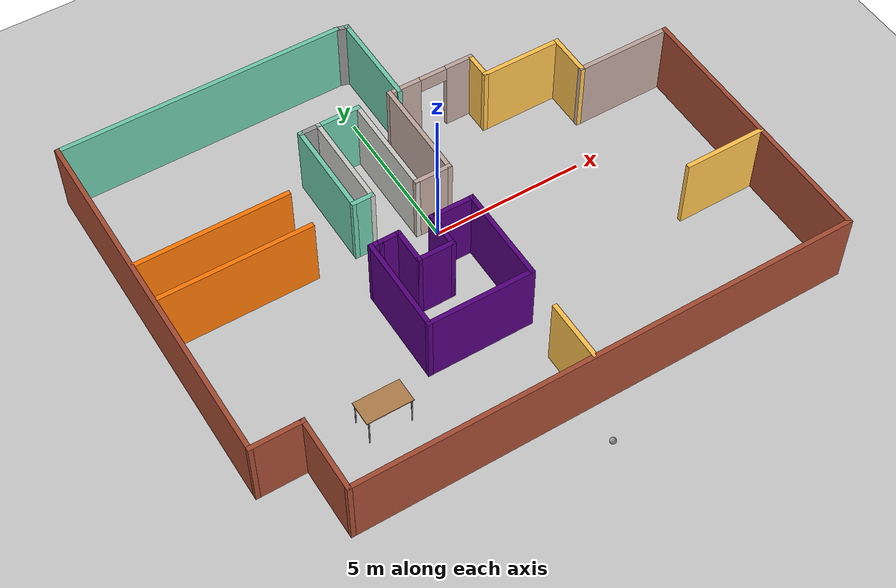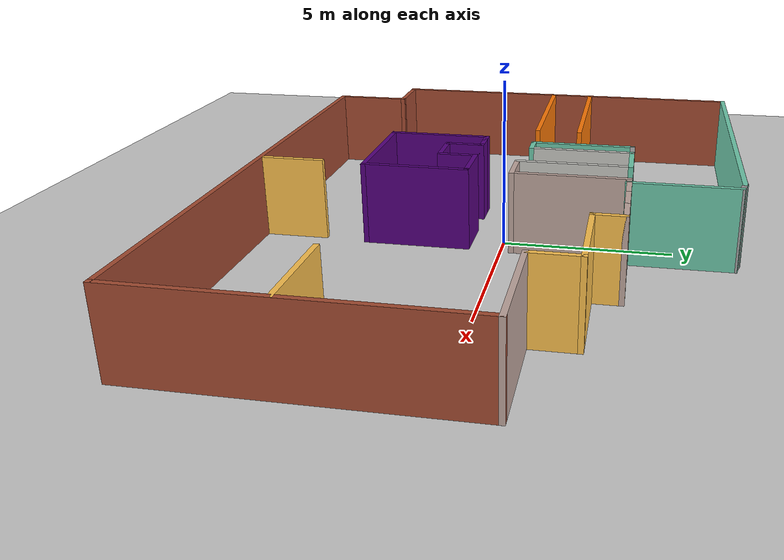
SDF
<sdf version="1.6">
 <world name="default">
  <model name="ground_plane">
   <static>1</static>
   <link name="link">
    <collision name="collision">
     <geometry><plane><normal>0 0 1</normal><size>100 100</size></plane></geometry>
     <surface><friction><ode><mu>100</mu><mu2>50</mu2></ode></friction></surface>
    </collision>
    <visual name="visual">
     <cast_shadows>0</cast_shadows>
     <geometry><plane><normal>0 0 1</normal><size>100 100</size></plane></geometry>
     <material>
      <script><uri>file://media/materials/scripts/gazebo.material</uri><name>Gazebo/Grey</name></script>
     </material>
    </visual>
   </link>
  </model>
  <model name="table">
   <static>1</static>
   <link name="link">
    <collision name="surface">
     <pose>0 0 1 0 -0 0</pose>
     <geometry><box><size>1.5 0.8 0.03</size></box></geometry>
     <surface><friction><ode><mu>0.6</mu><mu2>0.6</mu2></ode></friction></surface>
    </collision>
    <visual name="visual1">
     <pose>0 0 1 0 -0 0</pose>
     <geometry><box><size>1.5 0.8 0.03</size></box></geometry>
     <material>
      <script><uri>file://media/materials/scripts/gazebo.material</uri><name>Gazebo/Wood</name></script>
     </material>
    </visual>
    <collision name="front_left_leg">
     <pose>0.68 0.38 0.5 0 -0 0</pose>
     <geometry><cylinder><radius>0.02</radius><length>1</length></cylinder></geometry>
    </collision>
    <visual name="front_left_leg">
     <pose>0.68 0.38 0.5 0 -0 0</pose>
     <geometry><cylinder><radius>0.02</radius><length>1</length></cylinder></geometry>
     <material>
      <script><uri>file://media/materials/scripts/gazebo.material</uri><name>Gazebo/Grey</name></script>
     </material>
    </visual>
    <collision name="front_right_leg">
     <pose>0.68 -0.38 0.5 0 -0 0</pose>
     <geometry><cylinder><radius>0.02</radius><length>1</length></cylinder></geometry>
    </collision>
    <visual name="front_right_leg">
     <pose>0.68 -0.38 0.5 0 -0 0</pose>
     <geometry><cylinder><radius>0.02</radius><length>1</length></cylinder></geometry>
     <material>
      <script><uri>file://media/materials/scripts/gazebo.material</uri><name>Gazebo/Grey</name></script>
     </material>
    </visual>
    <collision name="back_right_leg">
     <pose>-0.68 -0.38 0.5 0 -0 0</pose>
     <geometry><cylinder><radius>0.02</radius><length>1</length></cylinder></geometry>
    </collision>
    <visual name="back_right_leg">
     <pose>-0.68 -0.38 0.5 0 -0 0</pose>
     <geometry><cylinder><radius>0.02</radius><length>1</length></cylinder></geometry>
     <material>
      <script><uri>file://media/materials/scripts/gazebo.material</uri><name>Gazebo/Grey</name></script>
     </material>
    </visual>
    <collision name="back_left_leg">
     <pose>-0.68 0.38 0.5 0 -0 0</pose>
     <geometry><cylinder><radius>0.02</radius><length>1</length></cylinder></geometry>
    </collision>
    <visual name="back_left_leg">
     <pose>-0.68 0.38 0.5 0 -0 0</pose>
     <geometry><cylinder><radius>0.02</radius><length>1</length></cylinder></geometry>
     <material>
      <script><uri>file://media/materials/scripts/gazebo.material</uri><name>Gazebo/Grey</name></script>
     </material>
    </visual>
   </link>
   <pose>-4.70685 -4.80066 0 0 -0 0</pose>
  </model>
  <model name="robothome1">
   <pose>0.15354 -0.2829 0 0 -0 0</pose>
   <link name="Wall_0">
    <collision name="Wall_0_Collision">
     <geometry><box><size>9 0.15 2.5</size></box></geometry>
     <pose>0 0 1.25 0 -0 0</pose>
    </collision>
    <visual name="Wall_0_Visual">
     <pose>0 0 1.25 0 -0 0</pose>
     <geometry><box><size>9 0.15 2.5</size></box></geometry>
     <material>
      <script><uri>file://media/materials/scripts/gazebo.material</uri><name>Gazebo/Bricks</name></script>
      <ambient>1 0.764706 0.305882 1</ambient>
     </material>
     <meta><layer>0</layer></meta>
    </visual>
    <pose>8.975 -2.68343 0 0 -0 1.5708</pose>
   </link>
   <link name="Wall_1">
    <collision name="Wall_1_Collision">
     <geometry><box><size>3.25 0.15 2.5</size></box></geometry>
     <pose>0 0 1.25 0 -0 0</pose>
    </collision>
    <visual name="Wall_1_Visual">
     <pose>0 0 1.25 0 -0 0</pose>
     <geometry><box><size>3.25 0.15 2.5</size></box></geometry>
     <material>
      <script><uri>file://media/materials/scripts/gazebo.material</uri><name>Gazebo/Grey</name></script>
      <ambient>0.760784 0.662745 0.627451 1</ambient>
     </material>
     <meta><layer>0</layer></meta>
    </visual>
    <pose>7.425 1.74157 0 0 -0 3.14159</pose>
   </link>
   <link name="Wall_10">
    <collision name="Wall_10_Collision">
     <geometry><box><size>3.25 0.15 2.5</size></box></geometry>
     <pose>0 0 1.25 0 -0 0</pose>
    </collision>
    <visual name="Wall_10_Visual">
     <pose>0 0 1.25 0 -0 0</pose>
     <geometry><box><size>3.25 0.15 2.5</size></box></geometry>
     <material>
      <script><uri>file://media/materials/scripts/gazebo.material</uri><name>Gazebo/CeilingTiled</name></script>
      <ambient>0.435294 0.796078 0.67451 1</ambient>
     </material>
     <meta><layer>0</layer></meta>
    </visual>
    <pose>-2.025 2.39157 0 0 0 -1.5708</pose>
   </link>
   <link name="Wall_11">
    <collision name="Wall_11_Collision">
     <geometry><box><size>0.75 0.15 2.5</size></box></geometry>
     <pose>0 0 1.25 0 -0 0</pose>
    </collision>
    <visual name="Wall_11_Visual">
     <pose>0 0 1.25 0 -0 0</pose>
     <geometry><box><size>0.75 0.15 2.5</size></box></geometry>
     <material>
      <script><uri>file://media/materials/scripts/gazebo.material</uri><name>Gazebo/Grey</name></script>
      <ambient>0.435294 0.796078 0.67451 1</ambient>
     </material>
     <meta><layer>0</layer></meta>
    </visual>
    <pose>-2.325 0.841572 0 0 -0 3.14159</pose>
   </link>
   <link name="Wall_12">
    <collision name="Wall_12_Collision">
     <geometry><box><size>3.25 0.15 2.5</size></box></geometry>
     <pose>0 0 1.25 0 -0 0</pose>
    </collision>
    <visual name="Wall_12_Visual">
     <pose>0 0 1.25 0 -0 0</pose>
     <geometry><box><size>3.25 0.15 2.5</size></box></geometry>
     <material>
      <script><uri>file://media/materials/scripts/gazebo.material</uri><name>Gazebo/Grey</name></script>
      <ambient>0.435294 0.796078 0.67451 1</ambient>
     </material>
     <meta><layer>0</layer></meta>
    </visual>
    <pose>-2.625 2.39157 0 0 -0 1.5708</pose>
   </link>
   <link name="Wall_13">
    <collision name="Wall_13_Collision">
     <geometry><box><size>0.75 0.15 2.5</size></box></geometry>
     <pose>0 0 1.25 0 -0 0</pose>
    </collision>
    <visual name="Wall_13_Visual">
     <pose>0 0 1.25 0 -0 0</pose>
     <geometry><box><size>0.75 0.15 2.5</size></box></geometry>
     <material>
      <script><uri>file://media/materials/scripts/gazebo.material</uri><name>Gazebo/Grey</name></script>
      <ambient>1 1 1 1</ambient>
     </material>
     <meta><layer>0</layer></meta>
    </visual>
    <pose>-2.325 3.94157 0 0 -0 0</pose>
   </link>
   <link name="Wall_15">
    <collision name="Wall_15_Collision">
     <geometry><box><size>16.5 0.15 2.5</size></box></geometry>
     <pose>0 0 1.25 0 -0 0</pose>
    </collision>
    <visual name="Wall_15_Visual">
     <pose>0 0 1.25 0 -0 0</pose>
     <geometry><box><size>16.5 0.15 2.5</size></box></geometry>
     <material>
      <script><uri>file://media/materials/scripts/gazebo.material</uri><name>Gazebo/Bricks</name></script>
      <ambient>0.760784 0.662745 0.627451 1</ambient>
     </material>
     <meta><layer>0</layer></meta>
    </visual>
    <pose>0.8 -7.10843 0 0 -0 3.14159</pose>
   </link>
   <link name="Wall_16">
    <collision name="Wall_16_Collision">
     <geometry><box><size>2.5 0.15 2.5</size></box></geometry>
     <pose>0 0 1.25 0 -0 0</pose>
    </collision>
    <visual name="Wall_16_Visual">
     <pose>0 0 1.25 0 -0 0</pose>
     <geometry><box><size>2.5 0.15 2.5</size></box></geometry>
     <material>
      <script><uri>file://media/materials/scripts/gazebo.material</uri><name>Gazebo/Bricks</name></script>
      <ambient>0.760784 0.662745 0.627451 1</ambient>
     </material>
     <meta><layer>0</layer></meta>
    </visual>
    <pose>-7.375 -5.93343 0 0 -0 1.5708</pose>
   </link>
   <link name="Wall_17">
    <collision name="Wall_17_Collision">
     <geometry><box><size>1.75 0.15 2.5</size></box></geometry>
     <pose>0 0 1.25 0 -0 0</pose>
    </collision>
    <visual name="Wall_17_Visual">
     <pose>0 0 1.25 0 -0 0</pose>
     <geometry><box><size>1.75 0.15 2.5</size></box></geometry>
     <material>
      <script><uri>file://media/materials/scripts/gazebo.material</uri><name>Gazebo/Bricks</name></script>
      <ambient>0.760784 0.662745 0.627451 1</ambient>
     </material>
     <meta><layer>0</layer></meta>
    </visual>
    <pose>-8.175 -4.75843 0 0 -0 3.14159</pose>
   </link>
   <link name="Wall_18">
    <collision name="Wall_18_Collision">
     <geometry><box><size>12 0.15 2.5</size></box></geometry>
     <pose>0 0 1.25 0 -0 0</pose>
    </collision>
    <visual name="Wall_18_Visual">
     <pose>0 0 1.25 0 -0 0</pose>
     <geometry><box><size>12 0.15 2.5</size></box></geometry>
     <material>
      <script><uri>file://media/materials/scripts/gazebo.material</uri><name>Gazebo/Bricks</name></script>
      <ambient>0.435294 0.796078 0.67451 1</ambient>
     </material>
     <meta><layer>0</layer></meta>
    </visual>
    <pose>-8.975 1.16657 0 0 -0 1.5708</pose>
   </link>
   <link name="Wall_19">
    <collision name="Wall_19_Collision">
     <geometry><box><size>9.5 0.15 2.5</size></box></geometry>
     <pose>0 0 1.25 0 -0 0</pose>
    </collision>
    <visual name="Wall_19_Visual">
     <pose>0 0 1.25 0 -0 0</pose>
     <geometry><box><size>9.5 0.15 2.5</size></box></geometry>
     <material>
      <script><uri>file://media/materials/scripts/gazebo.material</uri><name>Gazebo/Grey</name></script>
      <ambient>0.435294 0.796078 0.67451 1</ambient>
     </material>
     <meta><layer>0</layer></meta>
    </visual>
    <pose>-4.3 7.09157 0 0 -0 0</pose>
   </link>
   <link name="Wall_2">
    <collision name="Wall_2_Collision">
     <geometry><box><size>1.5 0.15 2.5</size></box></geometry>
     <pose>0 0 1.25 0 -0 0</pose>
    </collision>
    <visual name="Wall_2_Visual">
     <pose>0 0 1.25 0 -0 0</pose>
     <geometry><box><size>1.5 0.15 2.5</size></box></geometry>
     <material>
      <script><uri>file://media/materials/scripts/gazebo.material</uri><name>Gazebo/Grey</name></script>
      <ambient>1 0.764706 0.305882 1</ambient>
     </material>
     <meta><layer>0</layer></meta>
    </visual>
    <pose>5.875 2.41657 0 0 -0 1.5708</pose>
   </link>
   <link name="Wall_21">
    <collision name="Wall_21_Collision">
     <geometry><box><size>0.5 0.15 2.5</size></box></geometry>
     <pose>0 0 1.25 0 -0 0</pose>
    </collision>
    <visual name="Wall_21_Visual">
     <pose>0 0 1.25 0 -0 0</pose>
     <geometry><box><size>0.5 0.15 2.5</size></box></geometry>
     <material>
      <script><uri>file://media/materials/scripts/gazebo.material</uri><name>Gazebo/Grey</name></script>
      <ambient>1 1 1 1</ambient>
     </material>
     <meta><layer>0</layer></meta>
    </visual>
    <pose>0.544037 7.04628 0 0 0 -0.261799</pose>
   </link>
   <link name="Wall_22">
    <collision name="Wall_22_Collision">
     <geometry><box><size>3.25 0.15 2.5</size></box></geometry>
     <pose>0 0 1.25 0 -0 0</pose>
    </collision>
    <visual name="Wall_22_Visual">
     <pose>0 0 1.25 0 -0 0</pose>
     <geometry><box><size>3.25 0.15 2.5</size></box></geometry>
     <material>
      <script><uri>file://media/materials/scripts/gazebo.material</uri><name>Gazebo/Grey</name></script>
      <ambient>0.435294 0.796078 0.67451 1</ambient>
     </material>
     <meta><layer>0</layer></meta>
    </visual>
    <pose>0.713074 5.45099 0 0 0 -1.5708</pose>
   </link>
   <link name="Wall_24">
    <collision name="Wall_24_Collision">
     <geometry><box><size>0.75 0.15 2.5</size></box></geometry>
     <pose>0 0 1.25 0 -0 0</pose>
    </collision>
    <visual name="Wall_24_Visual">
     <pose>0 0 1.25 0 -0 0</pose>
     <geometry><box><size>0.75 0.15 2.5</size></box></geometry>
     <material>
      <script><uri>file://media/materials/scripts/gazebo.material</uri><name>Gazebo/Grey</name></script>
      <ambient>0.333333 0 0.498039 1</ambient>
     </material>
     <meta><layer>0</layer></meta>
    </visual>
    <pose>-2.37127 -0.742346 0 0 -0 0</pose>
   </link>
   <link name="Wall_25">
    <collision name="Wall_25_Collision">
     <geometry><box><size>1.25 0.15 2.5</size></box></geometry>
     <pose>0 0 1.25 0 -0 0</pose>
    </collision>
    <visual name="Wall_25_Visual">
     <pose>0 0 1.25 0 -0 0</pose>
     <geometry><box><size>1.25 0.15 2.5</size></box></geometry>
     <material>
      <script><uri>file://media/materials/scripts/gazebo.material</uri><name>Gazebo/Grey</name></script>
      <ambient>0.333333 0 0.498039 1</ambient>
     </material>
     <meta><layer>0</layer></meta>
    </visual>
    <pose>-2.07127 -1.29235 0 0 0 -1.5708</pose>
   </link>
   <link name="Wall_26">
    <collision name="Wall_26_Collision">
     <geometry><box><size>1.25 0.15 2.5</size></box></geometry>
     <pose>0 0 1.25 0 -0 0</pose>
    </collision>
    <visual name="Wall_26_Visual">
     <pose>0 0 1.25 0 -0 0</pose>
     <geometry><box><size>1.25 0.15 2.5</size></box></geometry>
     <material>
      <script><uri>file://media/materials/scripts/gazebo.material</uri><name>Gazebo/Grey</name></script>
      <ambient>0.333333 0 0.498039 1</ambient>
     </material>
     <meta><layer>0</layer></meta>
    </visual>
    <pose>-1.52127 -1.84235 0 0 -0 0</pose>
   </link>
   <link name="Wall_27">
    <collision name="Wall_27_Collision">
     <geometry><box><size>1.25 0.15 2.5</size></box></geometry>
     <pose>0 0 1.25 0 -0 0</pose>
    </collision>
    <visual name="Wall_27_Visual">
     <pose>0 0 1.25 0 -0 0</pose>
     <geometry><box><size>1.25 0.15 2.5</size></box></geometry>
     <material>
      <script><uri>file://media/materials/scripts/gazebo.material</uri><name>Gazebo/Grey</name></script>
      <ambient>0.333333 0 0.498039 1</ambient>
     </material>
     <meta><layer>0</layer></meta>
    </visual>
    <pose>-0.971265 -1.29235 0 0 -0 1.5708</pose>
   </link>
   <link name="Wall_28">
    <collision name="Wall_28_Collision">
     <geometry><box><size>1.5 0.15 2.5</size></box></geometry>
     <pose>0 0 1.25 0 -0 0</pose>
    </collision>
    <visual name="Wall_28_Visual">
     <pose>0 0 1.25 0 -0 0</pose>
     <geometry><box><size>1.5 0.15 2.5</size></box></geometry>
     <material>
      <script><uri>file://media/materials/scripts/gazebo.material</uri><name>Gazebo/Grey</name></script>
      <ambient>0.333333 0 0.498039 1</ambient>
     </material>
     <meta><layer>0</layer></meta>
    </visual>
    <pose>-0.296266 -0.742346 0 0 -0 0</pose>
   </link>
   <link name="Wall_29">
    <collision name="Wall_29_Collision">
     <geometry><box><size>3.25 0.15 2.5</size></box></geometry>
     <pose>0 0 1.25 0 -0 0</pose>
    </collision>
    <visual name="Wall_29_Visual">
     <pose>0 0 1.25 0 -0 0</pose>
     <geometry><box><size>3.25 0.15 2.5</size></box></geometry>
     <material>
      <script><uri>file://media/materials/scripts/gazebo.material</uri><name>Gazebo/Grey</name></script>
      <ambient>0.333333 0 0.498039 1</ambient>
     </material>
     <meta><layer>0</layer></meta>
    </visual>
    <pose>0.378734 -2.29235 0 0 0 -1.5708</pose>
   </link>
   <link name="Wall_3">
    <collision name="Wall_3_Collision">
     <geometry><box><size>2.75 0.15 2.5</size></box></geometry>
     <pose>0 0 1.25 0 -0 0</pose>
    </collision>
    <visual name="Wall_3_Visual">
     <pose>0 0 1.25 0 -0 0</pose>
     <geometry><box><size>2.75 0.15 2.5</size></box></geometry>
     <material>
      <script><uri>file://media/materials/scripts/gazebo.material</uri><name>Gazebo/Grey</name></script>
      <ambient>1 0.764706 0.305882 1</ambient>
     </material>
     <meta><layer>0</layer></meta>
    </visual>
    <pose>4.575 3.09157 0 0 -0 3.14159</pose>
   </link>
   <link name="Wall_30">
    <collision name="Wall_30_Collision">
     <geometry><box><size>3.5 0.15 2.5</size></box></geometry>
     <pose>0 0 1.25 0 -0 0</pose>
    </collision>
    <visual name="Wall_30_Visual">
     <pose>0 0 1.25 0 -0 0</pose>
     <geometry><box><size>3.5 0.15 2.5</size></box></geometry>
     <material>
      <script><uri>file://media/materials/scripts/gazebo.material</uri><name>Gazebo/Grey</name></script>
      <ambient>0.333333 0 0.498039 1</ambient>
     </material>
     <meta><layer>0</layer></meta>
    </visual>
    <pose>-1.29627 -3.84235 0 0 -0 3.14159</pose>
   </link>
   <link name="Wall_31">
    <collision name="Wall_31_Collision">
     <geometry><box><size>3.25 0.15 2.5</size></box></geometry>
     <pose>0 0 1.25 0 -0 0</pose>
    </collision>
    <visual name="Wall_31_Visual">
     <pose>0 0 1.25 0 -0 0</pose>
     <geometry><box><size>3.25 0.15 2.5</size></box></geometry>
     <material>
      <script><uri>file://media/materials/scripts/gazebo.material</uri><name>Gazebo/Grey</name></script>
      <ambient>0.333333 0 0.498039 1</ambient>
     </material>
     <meta><layer>0</layer></meta>
    </visual>
    <pose>-2.97126 -2.29235 0 0 -0 1.5708</pose>
   </link>
   <link name="Wall_32">
    <collision name="Wall_32_Collision">
     <geometry><box><size>0.45 0.15 2.5</size></box></geometry>
     <pose>0 0 1.25 0 -0 0</pose>
    </collision>
    <visual name="Wall_32_Visual">
     <pose>0 0 1.25 0 -0 0</pose>
     <geometry><box><size>0.45 0.15 2.5</size></box></geometry>
     <material>
      <script><uri>file://media/materials/scripts/gazebo.material</uri><name>Gazebo/Grey</name></script>
      <ambient>0.333333 0 0.498039 1</ambient>
     </material>
     <meta><layer>0</layer></meta>
    </visual>
    <pose>-2.82127 -0.742346 0 0 -0 0</pose>
   </link>
   <link name="Wall_34">
    <collision name="Wall_34_Collision">
     <geometry><box><size>5 0.15 2.5</size></box></geometry>
     <pose>0 0 1.25 0 -0 0</pose>
    </collision>
    <visual name="Wall_34_Visual">
     <pose>0 0 1.25 0 -0 0</pose>
     <geometry><box><size>5 0.15 2.5</size></box></geometry>
     <material>
      <script><uri>file://media/materials/scripts/gazebo.material</uri><name>Gazebo/Grey</name></script>
      <ambient>0.996078 0.47451 0.0196078 1</ambient>
     </material>
     <meta><layer>0</layer></meta>
    </visual>
    <pose>-6.46071 0.793016 0 0 -0 0</pose>
   </link>
   <link name="Wall_36">
    <collision name="Wall_36_Collision">
     <geometry><box><size>5 0.15 2.5</size></box></geometry>
     <pose>0 0 1.25 0 -0 0</pose>
    </collision>
    <visual name="Wall_36_Visual">
     <pose>0 0 1.25 0 -0 0</pose>
     <geometry><box><size>5 0.15 2.5</size></box></geometry>
     <material>
      <script><uri>file://media/materials/scripts/gazebo.material</uri><name>Gazebo/Grey</name></script>
      <ambient>0.996078 0.47451 0.0196078 1</ambient>
     </material>
     <meta><layer>0</layer></meta>
    </visual>
    <pose>-6.46071 2.16499 0 0 -0 0</pose>
   </link>
   <link name="Wall_38">
    <collision name="Wall_38_Collision">
     <geometry><box><size>2 0.15 2.5</size></box></geometry>
     <pose>0 0 1.25 0 -0 0</pose>
    </collision>
    <visual name="Wall_38_Visual">
     <pose>0 0 1.25 0 -0 0</pose>
     <geometry><box><size>2 0.15 2.5</size></box></geometry>
     <material>
      <script><uri>file://media/materials/scripts/gazebo.material</uri><name>Gazebo/Grey</name></script>
      <ambient>1 0.764706 0.305882 1</ambient>
     </material>
     <meta><layer>0</layer></meta>
    </visual>
    <pose>0.260765 -6.12685 0 0 -0 1.5708</pose>
   </link>
   <link name="Wall_4">
    <collision name="Wall_4_Collision">
     <geometry><box><size>1 0.15 2.5</size></box></geometry>
     <pose>0 0 1.25 0 -0 0</pose>
    </collision>
    <visual name="Wall_4_Visual">
     <pose>0 0 1.25 0 -0 0</pose>
     <geometry><box><size>1 0.15 2.5</size></box></geometry>
     <material>
      <script><uri>file://media/materials/scripts/gazebo.material</uri><name>Gazebo/Grey</name></script>
      <ambient>1 0.764706 0.305882 1</ambient>
     </material>
     <meta><layer>0</layer></meta>
    </visual>
    <pose>3.275 3.51657 0 0 -0 1.5708</pose>
   </link>
   <link name="Wall_40">
    <collision name="Wall_40_Collision">
     <geometry><box><size>2.75 0.15 2.5</size></box></geometry>
     <pose>0 0 1.25 0 -0 0</pose>
    </collision>
    <visual name="Wall_40_Visual">
     <pose>0 0 1.25 0 -0 0</pose>
     <geometry><box><size>2.75 0.15 2.5</size></box></geometry>
     <material>
      <script><uri>file://media/materials/scripts/gazebo.material</uri><name>Gazebo/Grey</name></script>
      <ambient>1 0.764706 0.305882 1</ambient>
     </material>
     <meta><layer>0</layer></meta>
    </visual>
    <pose>7.6635 -3.0705 0 0 -0 3.14159</pose>
   </link>
   <link name="Wall_5">
    <pose>1.85 3.94157 0 0 -0 3.14159</pose>
    <visual name="Wall_5_Visual_0">
     <pose>-1.01236 0 1.25 0 -0 0</pose>
     <geometry><box><size>0.975281 0.15 2.5</size></box></geometry>
     <material>
      <script><uri>file://media/materials/scripts/gazebo.material</uri><name>Gazebo/Grey</name></script>
      <ambient>0.760784 0.662745 0.627451 1</ambient>
     </material>
     <meta><layer>0</layer></meta>
    </visual>
    <collision name="Wall_5_Collision_0">
     <geometry><box><size>0.975281 0.15 2.5</size></box></geometry>
     <pose>-1.01236 0 1.25 0 -0 0</pose>
    </collision>
    <visual name="Wall_5_Visual_1">
     <pose>0.93764 0 1.25 0 -0 0</pose>
     <geometry><box><size>1.12472 0.15 2.5</size></box></geometry>
     <material>
      <script><uri>file://media/materials/scripts/gazebo.material</uri><name>Gazebo/Grey</name></script>
      <ambient>0.760784 0.662745 0.627451 1</ambient>
     </material>
     <meta><layer>0</layer></meta>
    </visual>
    <collision name="Wall_5_Collision_1">
     <geometry><box><size>1.12472 0.15 2.5</size></box></geometry>
     <pose>0.93764 0 1.25 0 -0 0</pose>
    </collision>
    <visual name="Wall_5_Visual_2">
     <pose>-0.074719 0 2.25 0 -0 0</pose>
     <geometry><box><size>0.9 0.15 0.5</size></box></geometry>
     <material>
      <script><uri>file://media/materials/scripts/gazebo.material</uri><name>Gazebo/Grey</name></script>
      <ambient>0.760784 0.662745 0.627451 1</ambient>
     </material>
     <meta><layer>0</layer></meta>
    </visual>
    <collision name="Wall_5_Collision_2">
     <geometry><box><size>0.9 0.15 0.5</size></box></geometry>
     <pose>-0.074719 0 2.25 0 -0 0</pose>
    </collision>
   </link>
   <link name="Wall_6">
    <collision name="Wall_6_Collision">
     <geometry><box><size>3.5 0.15 2.5</size></box></geometry>
     <pose>0 0 1.25 0 -0 0</pose>
    </collision>
    <visual name="Wall_6_Visual">
     <pose>0 0 1.25 0 -0 0</pose>
     <geometry><box><size>3.5 0.15 2.5</size></box></geometry>
     <material>
      <script><uri>file://media/materials/scripts/gazebo.material</uri><name>Gazebo/Grey</name></script>
      <ambient>0.760784 0.662745 0.627451 1</ambient>
     </material>
     <meta><layer>0</layer></meta>
    </visual>
    <pose>0.425 2.26657 0 0 0 -1.5708</pose>
   </link>
   <link name="Wall_7">
    <collision name="Wall_7_Collision">
     <geometry><box><size>1.25 0.15 2.5</size></box></geometry>
     <pose>0 0 1.25 0 -0 0</pose>
    </collision>
    <visual name="Wall_7_Visual">
     <pose>0 0 1.25 0 -0 0</pose>
     <geometry><box><size>1.25 0.15 2.5</size></box></geometry>
     <material>
      <script><uri>file://media/materials/scripts/gazebo.material</uri><name>Gazebo/Grey</name></script>
      <ambient>0.760784 0.662745 0.627451 1</ambient>
     </material>
     <meta><layer>0</layer></meta>
    </visual>
    <pose>-0.125 0.591572 0 0 -0 3.14159</pose>
   </link>
   <link name="Wall_8">
    <collision name="Wall_8_Collision">
     <geometry><box><size>3.5 0.15 2.5</size></box></geometry>
     <pose>0 0 1.25 0 -0 0</pose>
    </collision>
    <visual name="Wall_8_Visual">
     <pose>0 0 1.25 0 -0 0</pose>
     <geometry><box><size>3.5 0.15 2.5</size></box></geometry>
     <material>
      <script><uri>file://media/materials/scripts/gazebo.material</uri><name>Gazebo/CeilingTiled</name></script>
      <ambient>0.435294 0.796078 0.67451 1</ambient>
     </material>
     <meta><layer>0</layer></meta>
    </visual>
    <pose>-0.675 2.26657 0 0 -0 1.5708</pose>
   </link>
   <link name="Wall_9">
    <collision name="Wall_9_Collision">
     <geometry><box><size>1.5 0.15 2.5</size></box></geometry>
     <pose>0 0 1.25 0 -0 0</pose>
    </collision>
    <visual name="Wall_9_Visual">
     <pose>0 0 1.25 0 -0 0</pose>
     <geometry><box><size>1.5 0.15 2.5</size></box></geometry>
     <material>
      <script><uri>file://media/materials/scripts/gazebo.material</uri><name>Gazebo/Grey</name></script>
      <ambient>0.435294 0.796078 0.67451 1</ambient>
     </material>
     <meta><layer>0</layer></meta>
    </visual>
    <pose>-1.35 3.94157 0 0 -0 3.14159</pose>
   </link>
   <static>1</static>
  </model>
  <model name="my_ball">
   <link name="link_0">
    <inertial>
     <mass>1</mass>
     <inertia><ixx>0.1</ixx><ixy>0</ixy><ixz>0</ixz><iyy>0.1</iyy><iyz>0</iyz><izz>0.1</izz></inertia>
    </inertial>
    <visual name="visual">
     <geometry><sphere><radius>0.1</radius></sphere></geometry>
     <material>
      <lighting>1</lighting>
      <script><uri>file://media/materials/scripts/gazebo.material</uri><name>Gazebo/Grey</name></script>
      <shader type="pixel"><normal_map>__default__</normal_map></shader>
      <ambient>1 1 1 1</ambient>
      <diffuse>1 1 1 1</diffuse>
      <specular>1 1 1 1</specular>
      <emissive>1 1 1 1</emissive>
     </material>
    </visual>
    <collision name="collision">
     <geometry><sphere><radius>0.1</radius></sphere></geometry>
     <surface>
      <friction>
       <ode><mu>1</mu><mu2>1</mu2><fdir1>0 0 0</fdir1><slip1>0</slip1><slip2>0</slip2></ode>
       <torsional>
        <coefficient>1</coefficient>
        <patch_radius>0</patch_radius>
        <surface_radius>0</surface_radius>
        <use_patch_radius>1</use_patch_radius>
        <ode><slip>0</slip></ode>
       </torsional>
      </friction>
      <bounce><restitution_coefficient>0</restitution_coefficient><threshold>1e+06</threshold></bounce>
      <contact>
       <collide_without_contact>0</collide_without_contact>
       <collide_without_contact_bitmask>1</collide_without_contact_bitmask>
       <collide_bitmask>1</collide_bitmask>
       <ode>
        <soft_cfm>0</soft_cfm>
        <soft_erp>0.2</soft_erp>
        <kp>1e+13</kp>
        <kd>1</kd>
        <max_vel>0.01</max_vel>
        <min_depth>0</min_depth>
       </ode>
       <bullet>
        <split_impulse>1</split_impulse>
        <split_impulse_penetration_threshold>-0.01</split_impulse_penetration_threshold>
        <soft_cfm>0</soft_cfm>
        <soft_erp>0.2</soft_erp>
        <kp>1e+13</kp>
        <kd>1</kd>
       </bullet>
      </contact>
     </surface>
    </collision>
   </link>
   <static>0</static>
   <pose>0.109971 -8.8893 0.5 0 -0 0</pose>
  </model>
 </world>
</sdf>
